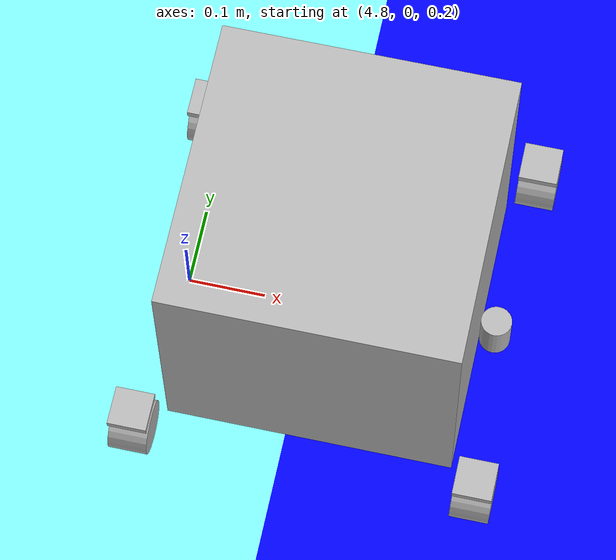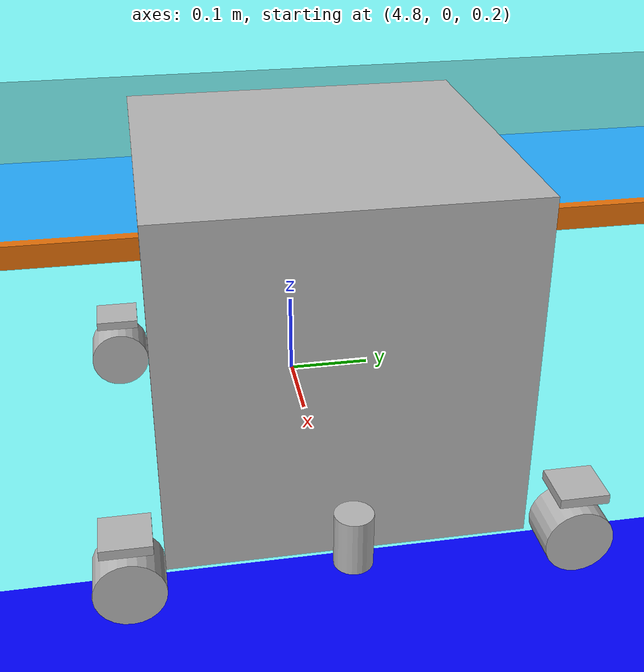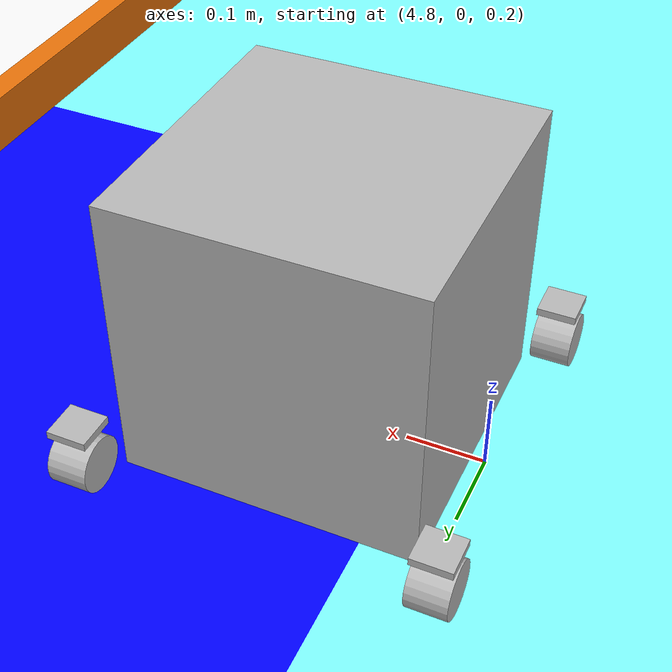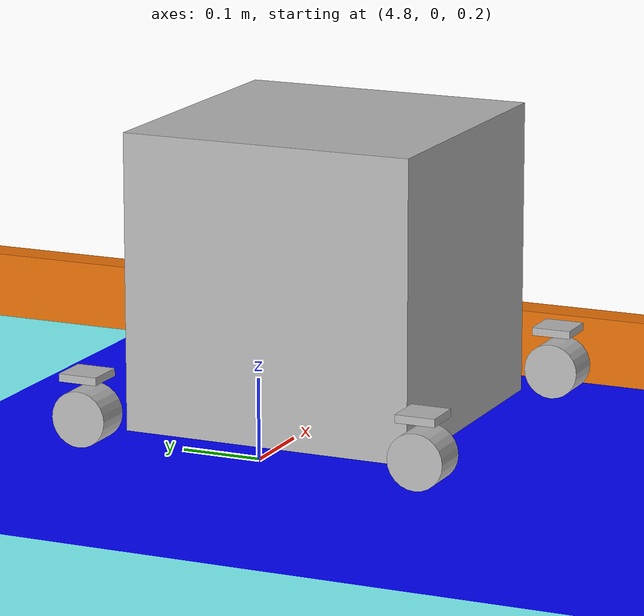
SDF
<?xml version="1.0"?>
<sdf version="1.6">
    <world name="nhk2023_field">
        <physics name="1ms" type="ignored">
            <max_step_size>0.001</max_step_size>
            <real_time_factor>1.0</real_time_factor>
        </physics>

        <plugin filename="libignition-gazebo-physics-system.so" name="ignition::gazebo::systems::Physics">
        </plugin>
        <plugin filename="libignition-gazebo-user-commands-system.so" name="ignition::gazebo::systems::UserCommands">
        </plugin>
        <plugin filename="libignition-gazebo-scene-broadcaster-system.so" name="ignition::gazebo::systems::SceneBroadcaster">
        </plugin>
        <plugin filename="libignition-gazebo-sensors-system.so" name="ignition::gazebo::systems::Sensors">
            <render_engine>ogre</render_engine>
        </plugin>
        <plugin filename="libignition-gazebo-imu-system.so" name="ignition::gazebo::systems::Imu">
        </plugin>

        <light type="directional" name="sun">
            <cast_shadows>true</cast_shadows>
            <pose>0 0 10 0 0 0</pose>
            <diffuse>0.8 0.8 0.8 1</diffuse>
            <specular>0.2 0.2 0.2 1</specular>
            <attenuation>
                <range>1000</range>
                <constant>0.9</constant>
                <linear>0.01</linear>
                <quadratic>0.001</quadratic>
            </attenuation>
            <direction>-0.5 0.1 -0.9</direction>
        </light>

        <model name="my_mesh">
            <pose>0 0 0  0 0 0</pose>
            <static>true</static>
            <link name="body">
                <visual name="visual">
                    <geometry>
                        <mesh>
                            <uri>file://worlds/field_NHK.dae</uri>
                        </mesh>
                    </geometry>
                </visual>
                <collision name="collision">
                    <geometry>
                        <mesh>
                            <uri>file://worlds/field_NHK.dae</uri>
                        </mesh>
                    </geometry>
                </collision>
            </link>
        </model>

        <include>
            <uri>file://worlds/models/swerve_robot.sdf</uri>
            <pose>5 0 0.2 0 0 0</pose>
        </include>

    </world>
</sdf>

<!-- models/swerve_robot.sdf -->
<sdf version="1.6">
    <model name='rr_swerve'>
        <link name='base_link'>
            <inertial>
                <pose>0 0 0.195 0 -0 0</pose>
                <mass>10</mass>
                <inertia>
                    <ixx>0.228167</ixx>
                    <ixy>0</ixy>
                    <ixz>0</ixz>
                    <iyy>0.228167</iyy>
                    <iyz>0</iyz>
                    <izz>0.228167</izz>
                </inertia>
            </inertial>
            <collision name='base_link_fixed_joint_lump__body_collision'>
                <pose>0 0 0.195 0 -0 0</pose>
                <geometry>
                    <box>
                        <size>0.3515 0.3515 0.3515</size>
                    </box>
                </geometry>
            </collision>
            <visual name='base_link_fixed_joint_lump__body_visual'>
                <pose>0 0 0.195 0 -0 0</pose>
                <geometry>
                    <box>
                        <size>0.37 0.37 0.37</size>
                    </box>
                </geometry>
            </visual>
        </link>
        <joint name='imu_joint' type='revolute'>
            <pose relative_to='base_link'>0 0 0.1 0 -0 0</pose>
            <parent>base_link</parent>
            <child>imu_link</child>
            <axis>
                <xyz>1 0 0</xyz>
                <limit>
                    <lower>0</lower>
                    <upper>0</upper>
                    <effort>0</effort>
                    <velocity>0</velocity>
                </limit>
                <dynamics>
                    <spring_reference>0</spring_reference>
                    <spring_stiffness>0</spring_stiffness>
                </dynamics>
            </axis>
        </joint>
        <link name='imu_link'>
            <pose relative_to='imu_joint'>0 0 0 0 -0 0</pose>
            <inertial>
                <pose>0 0 0 0 -0 0</pose>
                <mass>0.1</mass>
                <inertia>
                    <ixx>0.0001</ixx>
                    <ixy>0</ixy>
                    <ixz>0</ixz>
                    <iyy>0.0001</iyy>
                    <iyz>0</iyz>
                    <izz>0.0001</izz>
                </inertia>
            </inertial>
            <collision name='imu_link_collision'>
                <pose>0 0 0 0 -0 0</pose>
                <geometry>
                    <box>
                        <size>0.1 0.1 0.1</size>
                    </box>
                </geometry>
            </collision>
            <visual name='imu_link_visual'>
                <pose>0 0 0 0 -0 0</pose>
                <geometry>
                    <box>
                        <size>0.1 0.1 0.1</size>
                    </box>
                </geometry>
            </visual>
            <sensor name="imu_sensor" type="imu">
                <always_on>1</always_on>
                <update_rate>1</update_rate>
                <visualize>true</visualize>
                <topic>imu</topic>
            </sensor>
        </link>
        <joint name='lidar_joint' type='revolute'>
            <pose relative_to='base_link'>0.205 0 0.04 0 -0 0</pose>
            <parent>base_link</parent>
            <child>lidar_link</child>
            <axis>
                <xyz>1 0 0</xyz>
                <limit>
                    <lower>0</lower>
                    <upper>0</upper>
                    <effort>0</effort>
                    <velocity>0</velocity>
                </limit>
                <dynamics>
                    <spring_reference>0</spring_reference>
                    <spring_stiffness>0</spring_stiffness>
                </dynamics>
            </axis>
        </joint>
        <link name='lidar_link'>
            <pose relative_to='lidar_joint'>0 0 0 0 -0 0</pose>
            <inertial>
                <pose>0 0 0 0 -0 0</pose>
                <mass>0.2</mass>
                <inertia>
                    <ixx>0.0001</ixx>
                    <ixy>0</ixy>
                    <ixz>0</ixz>
                    <iyy>0.0001</iyy>
                    <iyz>0</iyz>
                    <izz>0.0001</izz>
                </inertia>
            </inertial>
            <collision name='lidar_link_collision'>
                <pose>0 0 0 0 -0 0</pose>
                <geometry>
                    <cylinder>
                        <length>0.06</length>
                        <radius>0.02</radius>
                    </cylinder>
                </geometry>
            </collision>
            <visual name='lidar_link_visual'>
                <pose>0 0 0 0 -0 0</pose>
                <geometry>
                    <cylinder>
                        <length>0.06</length>
                        <radius>0.02</radius>
                    </cylinder>
                </geometry>
            </visual>
            <sensor type="gpu_lidar" name="lidar">
                <topic>lidar</topic>
                <pose>0 0 0 0 0 0</pose>
                <visualize>false</visualize>
                <update_rate>10</update_rate>
                <lidar>
                    <scan>
                        <horizontal>
                            <samples>400</samples>
                            <resolution>1</resolution>
                            <min_angle>-3.05433</min_angle>
                            <max_angle>3.05433</max_angle>
                        </horizontal>
                    </scan>
                    <range>
                        <min>0.10</min>
                        <max>20.0</max>
                        <resolution>0.01</resolution>
                    </range>
                    <noise>
                        <type>gaussian</type>
                        <mean>0.0</mean>
                        <stddev>0.01</stddev>
                    </noise>
                </lidar>
                <always_on>1</always_on>
                <visualize>true</visualize>
            </sensor>
        </link>
        <joint name='wheel_lb_angular_joint' type='revolute'>
            <pose relative_to='base_link'>-0.22 0.22 0.085 1.5708 -0 0</pose>
            <parent>base_link</parent>
            <child>wheel_lb_round_table</child>
            <axis>
                <xyz>0 1 0</xyz>
                <limit>
                    <effort>6</effort>
                    <velocity>12</velocity>
                    <lower>-1e+16</lower>
                    <upper>1e+16</upper>
                </limit>
                <dynamics>
                    <damping>0.1</damping>
                    <friction>0</friction>
                    <spring_reference>0</spring_reference>
                    <spring_stiffness>0</spring_stiffness>
                </dynamics>
            </axis>
        </joint>
        <link name='wheel_lb_round_table'>
            <pose relative_to='wheel_lb_angular_joint'>0 0 0 0 -0 0</pose>
            <inertial>
                <pose>0 0 0 0 -0 0</pose>
                <mass>0.1</mass>
                <inertia>
                    <ixx>2.16667e-05</ixx>
                    <ixy>0</ixy>
                    <ixz>0</ixz>
                    <iyy>4.16667e-05</iyy>
                    <iyz>0</iyz>
                    <izz>2.16667e-05</izz>
                </inertia>
            </inertial>
            <collision name='wheel_lb_round_table_collision'>
                <pose>0 0 0 0 -0 0</pose>
                <geometry>
                    <box>
                        <size>0.0475 0.0095 0.0475</size>
                    </box>
                </geometry>
            </collision>
            <visual name='wheel_lb_round_table_visual'>
                <pose>0 0 0 0 -0 0</pose>
                <geometry>
                    <box>
                        <size>0.05 0.01 0.05</size>
                    </box>
                </geometry>
            </visual>
        </link>
        <joint name='wheel_lb_joint' type='revolute'>
            <pose relative_to='wheel_lb_round_table'>0 -0.05 0 0 1.5708 0</pose>
            <parent>wheel_lb_round_table</parent>
            <child>wheel_lb</child>
            <axis>
                <xyz>0 0 -1</xyz>
                <limit>
                    <effort>6</effort>
                    <velocity>60</velocity>
                    <lower>-1e+16</lower>
                    <upper>1e+16</upper>
                </limit>
                <dynamics>
                    <damping>0.1</damping>
                    <friction>0</friction>
                    <spring_reference>0</spring_reference>
                    <spring_stiffness>0</spring_stiffness>
                </dynamics>
            </axis>
        </joint>
        <link name='wheel_lb'>
            <pose relative_to='wheel_lb_joint'>0 0 0 0 -0 0</pose>
            <inertial>
                <pose>0 0 0 0 -0 0</pose>
                <mass>0.5</mass>
                <inertia>
                    <ixx>0.000257292</ixx>
                    <ixy>0</ixy>
                    <ixz>0</ixz>
                    <iyy>0.000257292</iyy>
                    <iyz>0</iyz>
                    <izz>0.00030625</izz>
                </inertia>
            </inertial>
            <collision name='wheel_lb_collision'>
                <pose>0 0 0 0 -0 0</pose>
                <geometry>
                    <cylinder>
                        <length>0.05</length>
                        <radius>0.035</radius>
                    </cylinder>
                </geometry>
            </collision>
            <visual name='wheel_lb_visual'>
                <pose>0 0 0 0 -0 0</pose>
                <geometry>
                    <cylinder>
                        <length>0.05</length>
                        <radius>0.035</radius>
                    </cylinder>
                </geometry>
            </visual>
        </link>
        <joint name='wheel_lf_angular_joint' type='revolute'>
            <pose relative_to='base_link'>0.22 0.22 0.085 1.5708 -0 0</pose>
            <parent>base_link</parent>
            <child>wheel_lf_round_table</child>
            <axis>
                <xyz>0 1 0</xyz>
                <limit>
                    <effort>6</effort>
                    <velocity>12</velocity>
                    <lower>-1e+16</lower>
                    <upper>1e+16</upper>
                </limit>
                <dynamics>
                    <damping>0.1</damping>
                    <friction>0</friction>
                    <spring_reference>0</spring_reference>
                    <spring_stiffness>0</spring_stiffness>
                </dynamics>
            </axis>
        </joint>
        <link name='wheel_lf_round_table'>
            <pose relative_to='wheel_lf_angular_joint'>0 0 0 0 -0 0</pose>
            <inertial>
                <pose>0 0 0 0 -0 0</pose>
                <mass>0.1</mass>
                <inertia>
                    <ixx>2.16667e-05</ixx>
                    <ixy>0</ixy>
                    <ixz>0</ixz>
                    <iyy>4.16667e-05</iyy>
                    <iyz>0</iyz>
                    <izz>2.16667e-05</izz>
                </inertia>
            </inertial>
            <collision name='wheel_lf_round_table_collision'>
                <pose>0 0 0 0 -0 0</pose>
                <geometry>
                    <box>
                        <size>0.0475 0.0095 0.0475</size>
                    </box>
                </geometry>
            </collision>
            <visual name='wheel_lf_round_table_visual'>
                <pose>0 0 0 0 -0 0</pose>
                <geometry>
                    <box>
                        <size>0.05 0.01 0.05</size>
                    </box>
                </geometry>
            </visual>
        </link>
        <joint name='wheel_lf_joint' type='revolute'>
            <pose relative_to='wheel_lf_round_table'>0 -0.05 0 0 1.5708 0</pose>
            <parent>wheel_lf_round_table</parent>
            <child>wheel_lf</child>
            <axis>
                <xyz>0 0 -1</xyz>
                <limit>
                    <effort>6</effort>
                    <velocity>60</velocity>
                    <lower>-1e+16</lower>
                    <upper>1e+16</upper>
                </limit>
                <dynamics>
                    <damping>0.1</damping>
                    <friction>0</friction>
                    <spring_reference>0</spring_reference>
                    <spring_stiffness>0</spring_stiffness>
                </dynamics>
            </axis>
        </joint>
        <link name='wheel_lf'>
            <pose relative_to='wheel_lf_joint'>0 0 0 0 -0 0</pose>
            <inertial>
                <pose>0 0 0 0 -0 0</pose>
                <mass>0.5</mass>
                <inertia>
                    <ixx>0.000257292</ixx>
                    <ixy>0</ixy>
                    <ixz>0</ixz>
                    <iyy>0.000257292</iyy>
                    <iyz>0</iyz>
                    <izz>0.00030625</izz>
                </inertia>
            </inertial>
            <collision name='wheel_lf_collision'>
                <pose>0 0 0 0 -0 0</pose>
                <geometry>
                    <cylinder>
                        <length>0.05</length>
                        <radius>0.035</radius>
                    </cylinder>
                </geometry>
            </collision>
            <visual name='wheel_lf_visual'>
                <pose>0 0 0 0 -0 0</pose>
                <geometry>
                    <cylinder>
                        <length>0.05</length>
                        <radius>0.035</radius>
                    </cylinder>
                </geometry>
            </visual>
        </link>
        <joint name='wheel_rb_angular_joint' type='revolute'>
            <pose relative_to='base_link'>-0.22 -0.22 0.085 1.5708 -0 0</pose>
            <parent>base_link</parent>
            <child>wheel_rb_round_table</child>
            <axis>
                <xyz>0 1 0</xyz>
                <limit>
                    <effort>6</effort>
                    <velocity>12</velocity>
                    <lower>-1e+16</lower>
                    <upper>1e+16</upper>
                </limit>
                <dynamics>
                    <damping>0.1</damping>
                    <friction>0</friction>
                    <spring_reference>0</spring_reference>
                    <spring_stiffness>0</spring_stiffness>
                </dynamics>
            </axis>
        </joint>
        <link name='wheel_rb_round_table'>
            <pose relative_to='wheel_rb_angular_joint'>0 0 0 0 -0 0</pose>
            <inertial>
                <pose>0 0 0 0 -0 0</pose>
                <mass>0.1</mass>
                <inertia>
                    <ixx>2.16667e-05</ixx>
                    <ixy>0</ixy>
                    <ixz>0</ixz>
                    <iyy>4.16667e-05</iyy>
                    <iyz>0</iyz>
                    <izz>2.16667e-05</izz>
                </inertia>
            </inertial>
            <collision name='wheel_rb_round_table_collision'>
                <pose>0 0 0 0 -0 0</pose>
                <geometry>
                    <box>
                        <size>0.0475 0.0095 0.0475</size>
                    </box>
                </geometry>
            </collision>
            <visual name='wheel_rb_round_table_visual'>
                <pose>0 0 0 0 -0 0</pose>
                <geometry>
                    <box>
                        <size>0.05 0.01 0.05</size>
                    </box>
                </geometry>
            </visual>
        </link>
        <joint name='wheel_rb_joint' type='revolute'>
            <pose relative_to='wheel_rb_round_table'>0 -0.05 0 0 1.5708 0</pose>
            <parent>wheel_rb_round_table</parent>
            <child>wheel_rb</child>
            <axis>
                <xyz>0 0 -1</xyz>
                <limit>
                    <effort>6</effort>
                    <velocity>60</velocity>
                    <lower>-1e+16</lower>
                    <upper>1e+16</upper>
                </limit>
                <dynamics>
                    <damping>0.1</damping>
                    <friction>0</friction>
                    <spring_reference>0</spring_reference>
                    <spring_stiffness>0</spring_stiffness>
                </dynamics>
            </axis>
        </joint>
        <link name='wheel_rb'>
            <pose relative_to='wheel_rb_joint'>0 0 0 0 -0 0</pose>
            <inertial>
                <pose>0 0 0 0 -0 0</pose>
                <mass>0.5</mass>
                <inertia>
                    <ixx>0.000257292</ixx>
                    <ixy>0</ixy>
                    <ixz>0</ixz>
                    <iyy>0.000257292</iyy>
                    <iyz>0</iyz>
                    <izz>0.00030625</izz>
                </inertia>
            </inertial>
            <collision name='wheel_rb_collision'>
                <pose>0 0 0 0 -0 0</pose>
                <geometry>
                    <cylinder>
                        <length>0.05</length>
                        <radius>0.035</radius>
                    </cylinder>
                </geometry>
            </collision>
            <visual name='wheel_rb_visual'>
                <pose>0 0 0 0 -0 0</pose>
                <geometry>
                    <cylinder>
                        <length>0.05</length>
                        <radius>0.035</radius>
                    </cylinder>
                </geometry>
            </visual>
        </link>
        <joint name='wheel_rf_angular_joint' type='revolute'>
            <pose relative_to='base_link'>0.22 -0.22 0.085 1.5708 -0 0</pose>
            <parent>base_link</parent>
            <child>wheel_rf_round_table</child>
            <axis>
                <xyz>0 1 0</xyz>
                <limit>
                    <effort>6</effort>
                    <velocity>12</velocity>
                    <lower>-1e+16</lower>
                    <upper>1e+16</upper>
                </limit>
                <dynamics>
                    <damping>0.1</damping>
                    <friction>0</friction>
                    <spring_reference>0</spring_reference>
                    <spring_stiffness>0</spring_stiffness>
                </dynamics>
            </axis>
        </joint>
        <link name='wheel_rf_round_table'>
            <pose relative_to='wheel_rf_angular_joint'>0 0 0 0 -0 0</pose>
            <inertial>
                <pose>0 0 0 0 -0 0</pose>
                <mass>0.1</mass>
                <inertia>
                    <ixx>2.16667e-05</ixx>
                    <ixy>0</ixy>
                    <ixz>0</ixz>
                    <iyy>4.16667e-05</iyy>
                    <iyz>0</iyz>
                    <izz>2.16667e-05</izz>
                </inertia>
            </inertial>
            <collision name='wheel_rf_round_table_collision'>
                <pose>0 0 0 0 -0 0</pose>
                <geometry>
                    <box>
                        <size>0.0475 0.0095 0.0475</size>
                    </box>
                </geometry>
            </collision>
            <visual name='wheel_rf_round_table_visual'>
                <pose>0 0 0 0 -0 0</pose>
                <geometry>
                    <box>
                        <size>0.05 0.01 0.05</size>
                    </box>
                </geometry>
            </visual>
        </link>
        <joint name='wheel_rf_joint' type='revolute'>
            <pose relative_to='wheel_rf_round_table'>0 -0.05 0 0 1.5708 0</pose>
            <parent>wheel_rf_round_table</parent>
            <child>wheel_rf</child>
            <axis>
                <xyz>0 0 -1</xyz>
                <limit>
                    <effort>6</effort>
                    <velocity>60</velocity>
                    <lower>-1e+16</lower>
                    <upper>1e+16</upper>
                </limit>
                <dynamics>
                    <damping>0.1</damping>
                    <friction>0</friction>
                    <spring_reference>0</spring_reference>
                    <spring_stiffness>0</spring_stiffness>
                </dynamics>
            </axis>
        </joint>
        <link name='wheel_rf'>
            <pose relative_to='wheel_rf_joint'>0 0 0 0 -0 0</pose>
            <inertial>
                <pose>0 0 0 0 -0 0</pose>
                <mass>0.5</mass>
                <inertia>
                    <ixx>0.000257292</ixx>
                    <ixy>0</ixy>
                    <ixz>0</ixz>
                    <iyy>0.000257292</iyy>
                    <iyz>0</iyz>
                    <izz>0.00030625</izz>
                </inertia>
            </inertial>
            <collision name='wheel_rf_collision'>
                <pose>0 0 0 0 -0 0</pose>
                <geometry>
                    <cylinder>
                        <length>0.05</length>
                        <radius>0.035</radius>
                    </cylinder>
                </geometry>
            </collision>
            <visual name='wheel_rf_visual'>
                <pose>0 0 0 0 -0 0</pose>
                <geometry>
                    <cylinder>
                        <length>0.05</length>
                        <radius>0.035</radius>
                    </cylinder>
                </geometry>
            </visual>
        </link>
        <plugin name='ignition::gazebo::systems::JointController' filename='ignition-gazebo-joint-controller-system'>
            <joint_name>wheel_rf_joint</joint_name>
            <joint_name>wheel_rf_angular_joint</joint_name>
        </plugin>
        <plugin name='ignition::gazebo::systems::JointController' filename='ignition-gazebo-joint-controller-system'>
            <joint_name>wheel_lf_joint</joint_name>
            <joint_name>wheel_lf_angular_joint</joint_name>
        </plugin>
        <plugin name='ignition::gazebo::systems::JointController' filename='ignition-gazebo-joint-controller-system'>
            <joint_name>wheel_rb_joint</joint_name>
            <joint_name>wheel_rb_angular_joint</joint_name>
        </plugin>
        <plugin name='ignition::gazebo::systems::JointController' filename='ignition-gazebo-joint-controller-system'>
            <joint_name>wheel_lb_joint</joint_name>
            <joint_name>wheel_lb_angular_joint</joint_name>
        </plugin>
        <static>0</static>
        <plugin filename="ignition-gazebo-velocity-control-system" name="ignition::gazebo::systems::VelocityControl">
        </plugin>
    </model>
</sdf>
